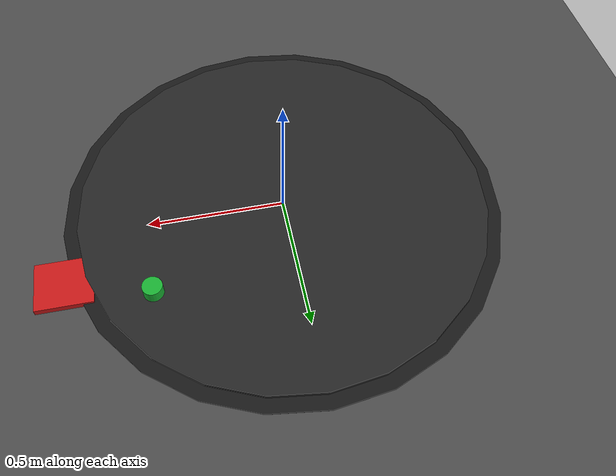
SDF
<sdf version="1.9">
 <world name="ctea_sumo">
  <include><uri>model://sun</uri></include>
  <model name="ground_plane">
   <static>true</static>
   <link name="link">
    <collision name="collision">
     <geometry><plane><normal>0 0 1</normal><size>5 5</size></plane></geometry>
    </collision>
    <visual name="visual">
     <geometry><plane><normal>0 0 1</normal><size>5 5</size></plane></geometry>
     <material><ambient>0.3 0.3 0.3 1</ambient></material>
    </visual>
   </link>
  </model>
  <model name="sumo_ring">
   <static>true</static>
   <pose>0 0 0.01 0 0 0</pose>
   <link name="ring_surface">
    <visual name="ring_visual">
     <geometry><cylinder><radius>0.75</radius><length>0.005</length></cylinder></geometry>
     <material><ambient>0.95 0.95 0.95 1</ambient></material>
    </visual>
    <collision name="ring_collision">
     <geometry><cylinder><radius>0.75</radius><length>0.005</length></cylinder></geometry>
     <surface><friction><ode><mu>0.6</mu><mu2>0.6</mu2></ode></friction></surface>
    </collision>
   </link>
   <link name="ring_border">
    <visual name="border_visual">
     <geometry><cylinder><radius>0.80</radius><length>0.005</length></cylinder></geometry>
     <material><ambient>0.1 0.1 0.1 1</ambient></material>
    </visual>
    <collision name="border_collision">
     <geometry><cylinder><radius>0.80</radius><length>0.005</length></cylinder></geometry>
     <surface><friction><ode><mu>0.5</mu><mu2>0.5</mu2></ode></friction></surface>
    </collision>
   </link>
   <link name="ring_wall">
    <pose>0 0 0.01 0 0 0</pose>
    <visual name="wall_visual">
     <geometry><cylinder><radius>0.75</radius><length>0.02</length></cylinder></geometry>
     <material><ambient>0.15 0.15 0.15 1</ambient></material>
    </visual>
    <collision name="wall_collision">
     <geometry><cylinder><radius>0.75</radius><length>0.02</length></cylinder></geometry>
     <surface>
      <bounce><restitution_coefficient>0.1</restitution_coefficient></bounce>
      <friction><ode><mu>0.8</mu><mu2>0.8</mu2></ode></friction>
     </surface>
    </collision>
   </link>
  </model>
  <model name="bottle_target">
   <static>true</static>
   <pose>0.5 0.3 0.001 0 0 0</pose>
   <link name="bottle_link">
    <visual name="bottle_visual">
     <geometry><cylinder><radius>0.035</radius><length>0.15</length></cylinder></geometry>
     <material><ambient>0.1 0.7 0.2 1</ambient></material>
    </visual>
    <collision name="bottle_collision">
     <geometry><cylinder><radius>0.035</radius><length>0.15</length></cylinder></geometry>
     <surface><friction><ode><mu>0.3</mu><mu2>0.3</mu2></ode></friction></surface>
    </collision>
   </link>
  </model>
  <model name="opponent">
   <pose>0.8 0.2 0.001 0 0 3.1416</pose>
   <link name="opponent_link">
    <inertial>
     <mass>0.300</mass>
     <inertia><ixx>0.001</ixx><ixy>0</ixy><ixz>0</ixz><iyy>0.001</iyy><iyz>0</iyz><izz>0.002</izz></inertia>
    </inertial>
    <visual name="opponent_visual">
     <geometry><box><size>0.200 0.180 0.040</size></box></geometry>
     <material><ambient>0.8 0.1 0.1 1</ambient></material>
    </visual>
    <collision name="opponent_collision">
     <geometry><box><size>0.200 0.180 0.040</size></box></geometry>
     <surface><friction><ode><mu>0.6</mu><mu2>0.6</mu2></ode></friction></surface>
    </collision>
   </link>
  </model>
  <physics type="ode">
   <real_time_update_rate>1000</real_time_update_rate>
   <max_step_size>0.001</max_step_size>
   <gravity>0 0 -9.81</gravity>
   <ode><solver><type>quick</type><iters>50</iters></solver></ode>
  </physics>
 </world>
</sdf>
